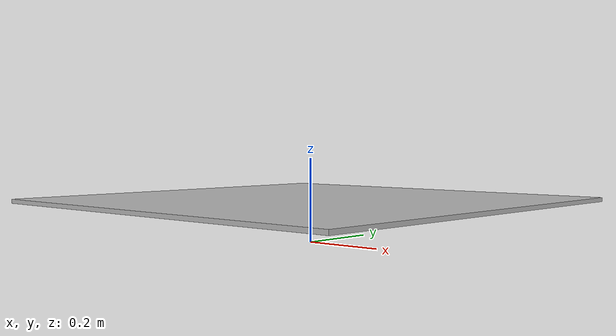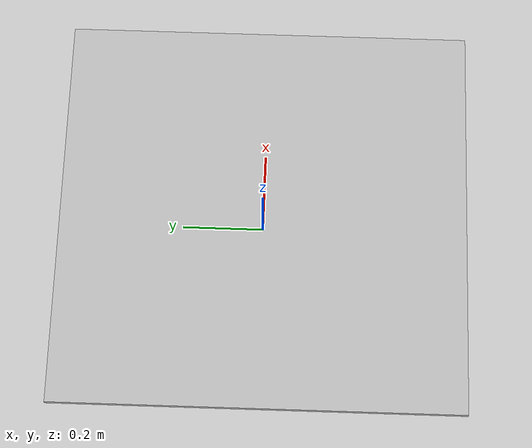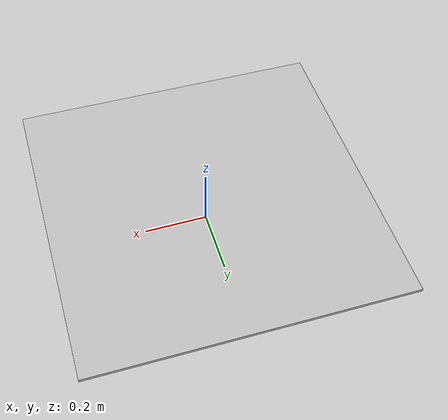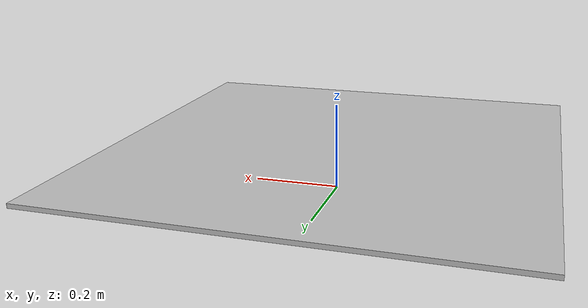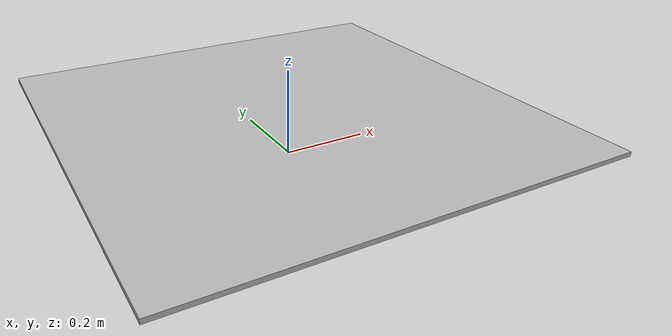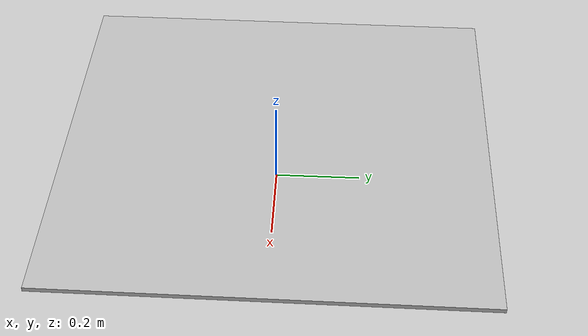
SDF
<?xml version="1.0" ?>
<sdf version='1.6'>

    <model name="scaler">
    <gravity>false</gravity>
    <pose>0 0 0.1 0 0 0</pose>
    <link name="link_1">
      <inertial>
        <mass>1.0</mass>
        <inertia> <!-- inertias are tricky to compute -->
          <!-- http://gazebosim.org/tutorials?tut=inertia&cat=build_robot -->
          <ixx>0.083</ixx>       <!-- for a box: ixx = 0.083 * mass * (y*y + z*z) -->
          <ixy>0.0</ixy>         <!-- for a box: ixy = 0 -->
          <ixz>0.0</ixz>         <!-- for a box: ixz = 0 -->
          <iyy>0.083</iyy>       <!-- for a box: iyy = 0.083 * mass * (x*x + z*z) -->
          <iyz>0.0</iyz>         <!-- for a box: iyz = 0 -->
          <izz>0.083</izz>       <!-- for a box: izz = 0.083 * mass * (x*x + y*y) -->
        </inertia>
      </inertial>
      <collision name="collision">
        <geometry>
          <box>
            <size>1 1 0.01</size>
          </box>
        </geometry>
      </collision>
      <visual name="visual">
        <geometry>
          <box>
            <size>1 1 0.01</size>
          </box>
        </geometry>
      </visual>
    </link>

    <!-- working joint -->
    <joint name="ft_sensor" type="fixed">
      <parent>world</parent>
      <child>link_1</child>
      <pose>0 0 0 0 0 0</pose>
      <dynamics damping="0.1"/>
      <disableFixedJointLumping>true</disableFixedJointLumping>
      <preserveFixedJoint>true</preserveFixedJoint>
      <sensor name="force_torque" type="force_torque">
        <update_rate>30</update_rate>
        <always_on>true</always_on>
        <visualize>true</visualize>
        <force_torque>
          <frame>child</frame>
          <measure_direction>child_to_parent</measure_direction>
        </force_torque>
      </sensor>
      <physics>
        <ode>
        </ode>
        <provide_feedback>true</provide_feedback>
      </physics>
    </joint>

  </model>
</sdf>
